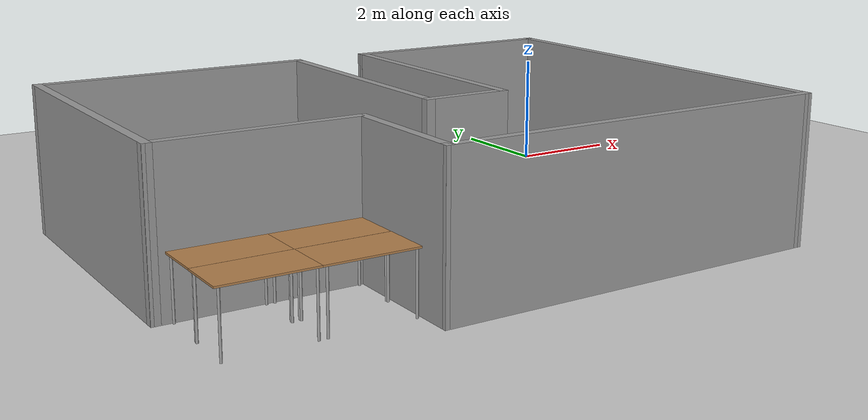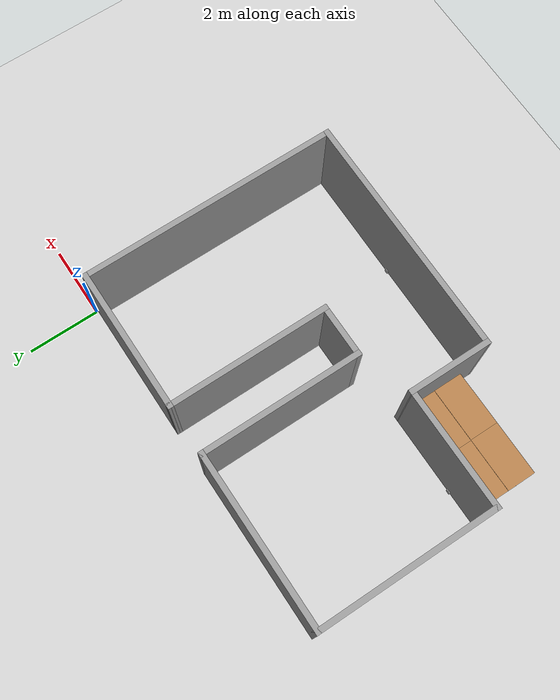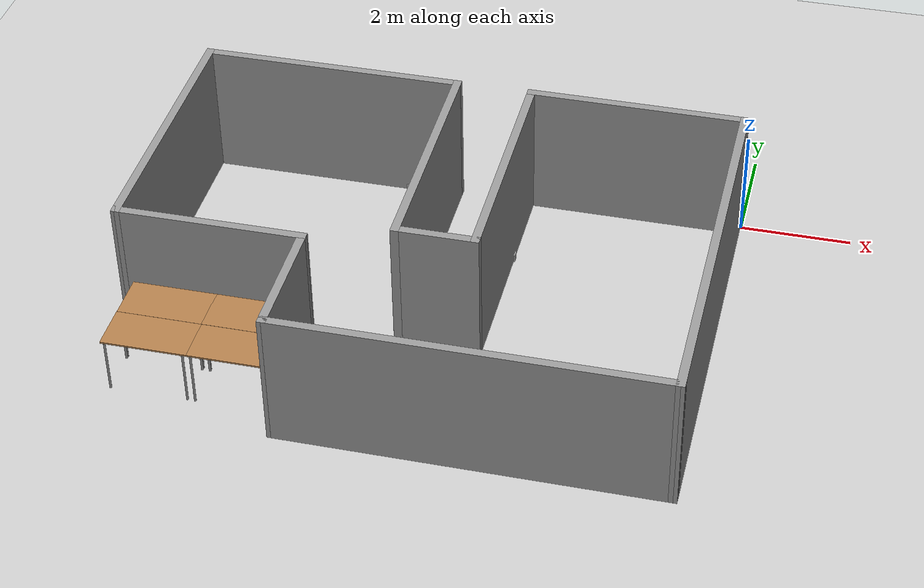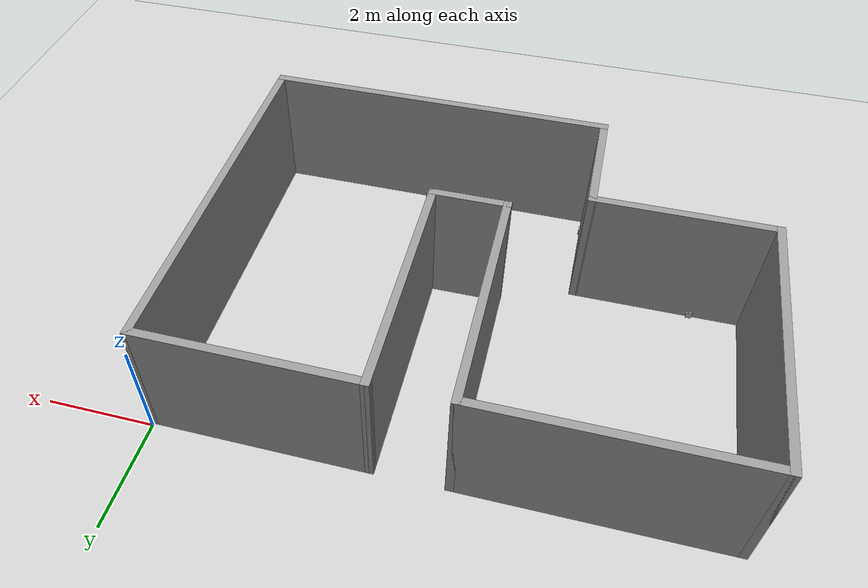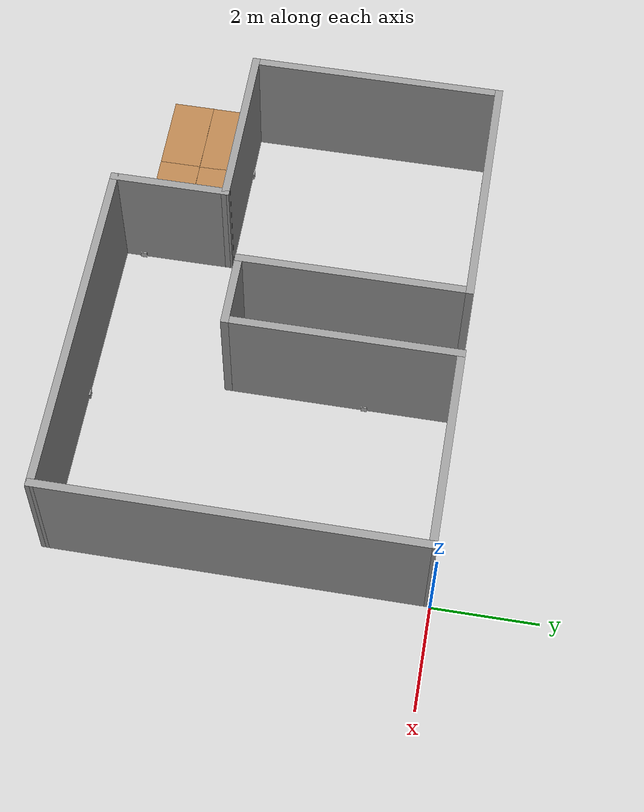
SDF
<sdf version="1.6">
 <world name="default">
  <scene><ambient>0.4 0.4 0.4 1</ambient><background>0.7 0.7 0.7 1</background><shadows>1</shadows></scene>
  <light name="sun" type="directional">
   <pose>0 0 10 0 -0 0</pose>
   <diffuse>0.8 0.8 0.8 1</diffuse>
   <specular>0.2 0.2 0.2 1</specular>
   <attenuation>
    <range>1000</range>
    <constant>0.9</constant>
    <linear>0.01</linear>
    <quadratic>0.001</quadratic>
   </attenuation>
   <direction>-0.5 0.1 -0.9</direction>
  </light>
  <model name="ground_plane">
   <static>1</static>
   <link name="link">
    <collision name="collision">
     <geometry><plane><normal>0 0 1</normal><size>100 100</size></plane></geometry>
     <surface><friction><ode><mu>100</mu><mu2>50</mu2></ode></friction></surface>
    </collision>
    <visual name="visual">
     <cast_shadows>0</cast_shadows>
     <geometry><plane><normal>0 0 1</normal><size>100 100</size></plane></geometry>
     <material>
      <script><uri>file://media/materials/scripts/gazebo.material</uri><name>Gazebo/Grey</name></script>
     </material>
    </visual>
   </link>
  </model>
  <physics name="default_physics" default="0" type="ode">
   <real_time_update_rate>1000</real_time_update_rate>
   <max_step_size>0.001</max_step_size>
   <real_time_factor>1</real_time_factor>
   <ode>
    <solver>
     <type>quick</type>
     <iters>150</iters>
     <precon_iters>0</precon_iters>
     <sor>1.4</sor>
     <use_dynamic_moi_rescaling>1</use_dynamic_moi_rescaling>
    </solver>
    <constraints>
     <cfm>1e-05</cfm>
     <erp>0.2</erp>
     <contact_max_correcting_vel>2000</contact_max_correcting_vel>
     <contact_surface_layer>0.01</contact_surface_layer>
    </constraints>
   </ode>
  </physics>
  <gravity>0 0 -9.8</gravity>
  <magnetic_field>6e-06 2.3e-05 -4.2e-05</magnetic_field>
  <atmosphere type="adiabatic"/>
  <audio><device>default</device></audio>
  <spherical_coordinates>
   <surface_model>EARTH_WGS84</surface_model>
   <latitude_deg>0</latitude_deg>
   <longitude_deg>0</longitude_deg>
   <elevation>0</elevation>
   <heading_deg>0</heading_deg>
  </spherical_coordinates>
  <model name="table">
   <static>1</static>
   <link name="link">
    <collision name="surface">
     <pose>0 0 1 0 -0 0</pose>
     <geometry><box><size>1.5 0.8 0.03</size></box></geometry>
     <surface><friction><ode><mu>0.6</mu><mu2>0.6</mu2></ode></friction></surface>
    </collision>
    <visual name="visual1">
     <pose>0 0 1 0 -0 0</pose>
     <geometry><box><size>1.5 0.8 0.03</size></box></geometry>
     <material>
      <script><uri>file://media/materials/scripts/gazebo.material</uri><name>Gazebo/Wood</name></script>
     </material>
    </visual>
    <collision name="front_left_leg">
     <pose>0.68 0.38 0.5 0 -0 0</pose>
     <geometry><cylinder><radius>0.02</radius><length>1</length></cylinder></geometry>
    </collision>
    <visual name="front_left_leg">
     <pose>0.68 0.38 0.5 0 -0 0</pose>
     <geometry><cylinder><radius>0.02</radius><length>1</length></cylinder></geometry>
     <material>
      <script><uri>file://media/materials/scripts/gazebo.material</uri><name>Gazebo/Grey</name></script>
     </material>
    </visual>
    <collision name="front_right_leg">
     <pose>0.68 -0.38 0.5 0 -0 0</pose>
     <geometry><cylinder><radius>0.02</radius><length>1</length></cylinder></geometry>
    </collision>
    <visual name="front_right_leg">
     <pose>0.68 -0.38 0.5 0 -0 0</pose>
     <geometry><cylinder><radius>0.02</radius><length>1</length></cylinder></geometry>
     <material>
      <script><uri>file://media/materials/scripts/gazebo.material</uri><name>Gazebo/Grey</name></script>
     </material>
    </visual>
    <collision name="back_right_leg">
     <pose>-0.68 -0.38 0.5 0 -0 0</pose>
     <geometry><cylinder><radius>0.02</radius><length>1</length></cylinder></geometry>
    </collision>
    <visual name="back_right_leg">
     <pose>-0.68 -0.38 0.5 0 -0 0</pose>
     <geometry><cylinder><radius>0.02</radius><length>1</length></cylinder></geometry>
     <material>
      <script><uri>file://media/materials/scripts/gazebo.material</uri><name>Gazebo/Grey</name></script>
     </material>
    </visual>
    <collision name="back_left_leg">
     <pose>-0.68 0.38 0.5 0 -0 0</pose>
     <geometry><cylinder><radius>0.02</radius><length>1</length></cylinder></geometry>
    </collision>
    <visual name="back_left_leg">
     <pose>-0.68 0.38 0.5 0 -0 0</pose>
     <geometry><cylinder><radius>0.02</radius><length>1</length></cylinder></geometry>
     <material>
      <script><uri>file://media/materials/scripts/gazebo.material</uri><name>Gazebo/Grey</name></script>
     </material>
    </visual>
   </link>
   <pose>-7.575 -5.45474 0 0 -0 0</pose>
  </model>
  <model name="sign_stop">
   <static>1</static>
   <link name="box">
    <collision name="collision"><geometry><box><size>0.12 0.025 0.25</size></box></geometry></collision>
    <visual name="visual">
     <geometry><box><size>0.12 0.025 0.25</size></box></geometry>
     <material>
      <script>
       <uri>model://sign_stop/materials/scripts</uri>
       <uri>model://sign_stop/materials/textures</uri>
       <name>sign_stop</name>
      </script>
     </material>
    </visual>
   </link>
   <pose>-3.85404 -1.79856 0 0 0 -1.5974</pose>
  </model>
  <model name="sign_stop_clone">
   <static>1</static>
   <link name="box">
    <collision name="collision"><geometry><box><size>0.12 0.025 0.25</size></box></geometry></collision>
    <visual name="visual">
     <geometry><box><size>0.12 0.025 0.25</size></box></geometry>
     <material>
      <script>
       <uri>model://sign_stop/materials/scripts</uri>
       <uri>model://sign_stop/materials/textures</uri>
       <name>sign_stop</name>
      </script>
     </material>
    </visual>
   </link>
   <pose>-3.3 -7.06148 0 0 -0 0</pose>
  </model>
  <model name="sign_stop_clone_1">
   <static>1</static>
   <link name="box">
    <collision name="collision"><geometry><box><size>0.12 0.025 0.25</size></box></geometry></collision>
    <visual name="visual">
     <geometry><box><size>0.12 0.025 0.25</size></box></geometry>
     <material>
      <script>
       <uri>model://sign_stop/materials/scripts</uri>
       <uri>model://sign_stop/materials/textures</uri>
       <name>sign_stop</name>
      </script>
     </material>
    </visual>
   </link>
   <pose>-6.23 -0.193478 0 0 -0 0</pose>
  </model>
  <model name="sign_stop_clone_3">
   <static>1</static>
   <link name="box">
    <collision name="collision"><geometry><box><size>0.12 0.025 0.25</size></box></geometry></collision>
    <visual name="visual">
     <geometry><box><size>0.12 0.025 0.25</size></box></geometry>
     <material>
      <script>
       <uri>model://sign_stop/materials/scripts</uri>
       <uri>model://sign_stop/materials/textures</uri>
       <name>sign_stop</name>
      </script>
     </material>
    </visual>
   </link>
   <pose>-6.65934 -6.71927 0 0 0 -1.58302</pose>
  </model>
  <model name="sign_stop_clone_0">
   <static>1</static>
   <link name="box">
    <collision name="collision"><geometry><box><size>0.12 0.025 0.25</size></box></geometry></collision>
    <visual name="visual">
     <geometry><box><size>0.12 0.025 0.25</size></box></geometry>
     <material>
      <script>
       <uri>model://sign_stop/materials/scripts</uri>
       <uri>model://sign_stop/materials/textures</uri>
       <name>sign_stop</name>
      </script>
     </material>
    </visual>
   </link>
   <pose>-9 -4.88 0 0 0 -0.002486</pose>
  </model>
  <model name="Measured_Stage">
   <pose>-5.03694 -3.63099 0 0 -0 0</pose>
   <link name="Wall_0">
    <collision name="Wall_0_Collision">
     <geometry><box><size>7.2 0.15 2.5</size></box></geometry>
     <pose>0 0 1.25 0 -0 0</pose>
    </collision>
    <visual name="Wall_0_Visual">
     <pose>0 0 1.25 0 -0 0</pose>
     <geometry><box><size>7.2 0.15 2.5</size></box></geometry>
     <material>
      <script><uri>file://media/materials/scripts/gazebo.material</uri><name>Gazebo/Grey</name></script>
      <ambient>1 1 1 1</ambient>
     </material>
     <meta><layer>0</layer></meta>
    </visual>
    <pose>4.94994 -0.006028 0 0 -0 1.5708</pose>
   </link>
   <link name="Wall_10">
    <collision name="Wall_10_Collision">
     <geometry><box><size>4.5 0.15 2.5</size></box></geometry>
     <pose>0 0 1.25 0 -0 0</pose>
    </collision>
    <visual name="Wall_10_Visual">
     <pose>0 0 1.25 0 -0 0</pose>
     <geometry><box><size>4.5 0.15 2.5</size></box></geometry>
     <material>
      <script><uri>file://media/materials/scripts/gazebo.material</uri><name>Gazebo/Grey</name></script>
      <ambient>1 1 1 1</ambient>
     </material>
     <meta><layer>0</layer></meta>
    </visual>
    <pose>1.09995 1.35598 0 0 -0 -1.5708</pose>
   </link>
   <link name="Wall_12">
    <collision name="Wall_12_Collision">
     <geometry><box><size>4.488 0.15 2.5</size></box></geometry>
     <pose>0 0 1.25 0 -0 0</pose>
    </collision>
    <visual name="Wall_12_Visual">
     <pose>0 0 1.25 0 -0 0</pose>
     <geometry><box><size>4.488 0.15 2.5</size></box></geometry>
     <material>
      <script><uri>file://media/materials/scripts/gazebo.material</uri><name>Gazebo/Grey</name></script>
      <ambient>1 1 1 1</ambient>
     </material>
     <meta><layer>0</layer></meta>
    </visual>
    <pose>-0.266063 1.34997 0 0 -0 1.5708</pose>
   </link>
   <link name="Wall_16">
    <collision name="Wall_16_Collision">
     <geometry><box><size>4 0.15 2.5</size></box></geometry>
     <pose>0 0 1.25 0 -0 0</pose>
    </collision>
    <visual name="Wall_16_Visual">
     <pose>0 0 1.25 0 -0 0</pose>
     <geometry><box><size>4 0.15 2.5</size></box></geometry>
     <material>
      <script><uri>file://media/materials/scripts/gazebo.material</uri><name>Gazebo/Grey</name></script>
      <ambient>1 1 1 1</ambient>
     </material>
     <meta><layer>0</layer></meta>
    </visual>
    <pose>3.02495 3.52498 0 0 -0 3.13847</pose>
   </link>
   <link name="Wall_18">
    <collision name="Wall_18_Collision">
     <geometry><box><size>1.51642 0.15 2.5</size></box></geometry>
     <pose>0 0 1.25 0 -0 0</pose>
    </collision>
    <visual name="Wall_18_Visual">
     <pose>0 0 1.25 0 -0 0</pose>
     <geometry><box><size>1.51642 0.15 2.5</size></box></geometry>
     <material>
      <script><uri>file://media/materials/scripts/gazebo.material</uri><name>Gazebo/Grey</name></script>
      <ambient>1 1 1 1</ambient>
     </material>
     <meta><layer>0</layer></meta>
    </visual>
    <pose>0.416937 -0.819028 0 0 -0 0</pose>
   </link>
   <link name="Wall_2">
    <collision name="Wall_2_Collision">
     <geometry><box><size>6.81 0.15 2.5</size></box></geometry>
     <pose>0 0 1.25 0 -0 0</pose>
    </collision>
    <visual name="Wall_2_Visual">
     <pose>0 0 1.25 0 -0 0</pose>
     <geometry><box><size>6.81 0.15 2.5</size></box></geometry>
     <material>
      <script><uri>file://media/materials/scripts/gazebo.material</uri><name>Gazebo/Grey</name></script>
      <ambient>1 1 1 1</ambient>
     </material>
     <meta><layer>0</layer></meta>
    </visual>
    <pose>1.61994 -3.52228 0 0 -0 3.13897</pose>
   </link>
   <link name="Wall_20">
    <collision name="Wall_20_Collision">
     <geometry><box><size>4.83422 0.15 2.5</size></box></geometry>
     <pose>0 0 1.25 0 -0 0</pose>
    </collision>
    <visual name="Wall_20_Visual">
     <pose>0 0 1.25 0 -0 0</pose>
     <geometry><box><size>4.83422 0.15 2.5</size></box></geometry>
     <material>
      <script><uri>file://media/materials/scripts/gazebo.material</uri><name>Gazebo/Grey</name></script>
      <ambient>1 1 1 1</ambient>
     </material>
     <meta><layer>0</layer></meta>
    </visual>
    <pose>-2.60806 3.51897 0 0 -0 0</pose>
   </link>
   <link name="Wall_4">
    <collision name="Wall_4_Collision">
     <geometry><box><size>2.32 0.15 2.5</size></box></geometry>
     <pose>0 0 1.25 0 -0 0</pose>
    </collision>
    <visual name="Wall_4_Visual">
     <pose>0 0 1.25 0 -0 0</pose>
     <geometry><box><size>2.32 0.15 2.5</size></box></geometry>
     <material>
      <script><uri>file://media/materials/scripts/gazebo.material</uri><name>Gazebo/Grey</name></script>
      <ambient>1 1 1 1</ambient>
     </material>
     <meta><layer>0</layer></meta>
    </visual>
    <pose>-1.71006 -2.42854 0 0 -0 1.5708</pose>
   </link>
   <link name="Wall_5">
    <collision name="Wall_5_Collision">
     <geometry><box><size>3.39 0.15 2.5</size></box></geometry>
     <pose>0 0 1.25 0 -0 0</pose>
    </collision>
    <visual name="Wall_5_Visual">
     <pose>0 0 1.25 0 -0 0</pose>
     <geometry><box><size>3.39 0.15 2.5</size></box></geometry>
     <material>
      <script><uri>file://media/materials/scripts/gazebo.material</uri><name>Gazebo/Grey</name></script>
      <ambient>1 1 1 1</ambient>
     </material>
     <meta><layer>0</layer></meta>
    </visual>
    <pose>-3.33006 -1.34378 0 0 -0 -3.14144</pose>
   </link>
   <link name="Wall_7">
    <collision name="Wall_7_Collision">
     <geometry><box><size>5.013 0.15 2.5</size></box></geometry>
     <pose>0 0 1.25 0 -0 0</pose>
    </collision>
    <visual name="Wall_7_Visual">
     <pose>0 0 1.25 0 -0 0</pose>
     <geometry><box><size>5.013 0.15 2.5</size></box></geometry>
     <material>
      <script><uri>file://media/materials/scripts/gazebo.material</uri><name>Gazebo/Grey</name></script>
      <ambient>1 1 1 1</ambient>
     </material>
     <meta><layer>0</layer></meta>
    </visual>
    <pose>-4.95006 1.08747 0 0 -0 1.5708</pose>
   </link>
   <static>1</static>
  </model>
  <model name="table_clone">
   <static>1</static>
   <link name="link">
    <collision name="surface">
     <pose>0 0 1 0 -0 0</pose>
     <geometry><box><size>1.5 0.8 0.03</size></box></geometry>
     <surface><friction><ode><mu>0.6</mu><mu2>0.6</mu2></ode></friction></surface>
    </collision>
    <visual name="visual1">
     <pose>0 0 1 0 -0 0</pose>
     <geometry><box><size>1.5 0.8 0.03</size></box></geometry>
     <material>
      <script><uri>file://media/materials/scripts/gazebo.material</uri><name>Gazebo/Wood</name></script>
     </material>
    </visual>
    <collision name="front_left_leg">
     <pose>0.68 0.38 0.5 0 -0 0</pose>
     <geometry><cylinder><radius>0.02</radius><length>1</length></cylinder></geometry>
    </collision>
    <visual name="front_left_leg">
     <pose>0.68 0.38 0.5 0 -0 0</pose>
     <geometry><cylinder><radius>0.02</radius><length>1</length></cylinder></geometry>
     <material>
      <script><uri>file://media/materials/scripts/gazebo.material</uri><name>Gazebo/Grey</name></script>
     </material>
    </visual>
    <collision name="front_right_leg">
     <pose>0.68 -0.38 0.5 0 -0 0</pose>
     <geometry><cylinder><radius>0.02</radius><length>1</length></cylinder></geometry>
    </collision>
    <visual name="front_right_leg">
     <pose>0.68 -0.38 0.5 0 -0 0</pose>
     <geometry><cylinder><radius>0.02</radius><length>1</length></cylinder></geometry>
     <material>
      <script><uri>file://media/materials/scripts/gazebo.material</uri><name>Gazebo/Grey</name></script>
     </material>
    </visual>
    <collision name="back_right_leg">
     <pose>-0.68 -0.38 0.5 0 -0 0</pose>
     <geometry><cylinder><radius>0.02</radius><length>1</length></cylinder></geometry>
    </collision>
    <visual name="back_right_leg">
     <pose>-0.68 -0.38 0.5 0 -0 0</pose>
     <geometry><cylinder><radius>0.02</radius><length>1</length></cylinder></geometry>
     <material>
      <script><uri>file://media/materials/scripts/gazebo.material</uri><name>Gazebo/Grey</name></script>
     </material>
    </visual>
    <collision name="back_left_leg">
     <pose>-0.68 0.38 0.5 0 -0 0</pose>
     <geometry><cylinder><radius>0.02</radius><length>1</length></cylinder></geometry>
    </collision>
    <visual name="back_left_leg">
     <pose>-0.68 0.38 0.5 0 -0 0</pose>
     <geometry><cylinder><radius>0.02</radius><length>1</length></cylinder></geometry>
     <material>
      <script><uri>file://media/materials/scripts/gazebo.material</uri><name>Gazebo/Grey</name></script>
     </material>
    </visual>
   </link>
   <pose>-7.57082 -6.25687 0 0 -0 0</pose>
  </model>
  <model name="table_clone_0">
   <static>1</static>
   <link name="link">
    <collision name="surface">
     <pose>0 0 1 0 -0 0</pose>
     <geometry><box><size>1.5 0.8 0.03</size></box></geometry>
     <surface><friction><ode><mu>0.6</mu><mu2>0.6</mu2></ode></friction></surface>
    </collision>
    <visual name="visual1">
     <pose>0 0 1 0 -0 0</pose>
     <geometry><box><size>1.5 0.8 0.03</size></box></geometry>
     <material>
      <script><uri>file://media/materials/scripts/gazebo.material</uri><name>Gazebo/Wood</name></script>
     </material>
    </visual>
    <collision name="front_left_leg">
     <pose>0.68 0.38 0.5 0 -0 0</pose>
     <geometry><cylinder><radius>0.02</radius><length>1</length></cylinder></geometry>
    </collision>
    <visual name="front_left_leg">
     <pose>0.68 0.38 0.5 0 -0 0</pose>
     <geometry><cylinder><radius>0.02</radius><length>1</length></cylinder></geometry>
     <material>
      <script><uri>file://media/materials/scripts/gazebo.material</uri><name>Gazebo/Grey</name></script>
     </material>
    </visual>
    <collision name="front_right_leg">
     <pose>0.68 -0.38 0.5 0 -0 0</pose>
     <geometry><cylinder><radius>0.02</radius><length>1</length></cylinder></geometry>
    </collision>
    <visual name="front_right_leg">
     <pose>0.68 -0.38 0.5 0 -0 0</pose>
     <geometry><cylinder><radius>0.02</radius><length>1</length></cylinder></geometry>
     <material>
      <script><uri>file://media/materials/scripts/gazebo.material</uri><name>Gazebo/Grey</name></script>
     </material>
    </visual>
    <collision name="back_right_leg">
     <pose>-0.68 -0.38 0.5 0 -0 0</pose>
     <geometry><cylinder><radius>0.02</radius><length>1</length></cylinder></geometry>
    </collision>
    <visual name="back_right_leg">
     <pose>-0.68 -0.38 0.5 0 -0 0</pose>
     <geometry><cylinder><radius>0.02</radius><length>1</length></cylinder></geometry>
     <material>
      <script><uri>file://media/materials/scripts/gazebo.material</uri><name>Gazebo/Grey</name></script>
     </material>
    </visual>
    <collision name="back_left_leg">
     <pose>-0.68 0.38 0.5 0 -0 0</pose>
     <geometry><cylinder><radius>0.02</radius><length>1</length></cylinder></geometry>
    </collision>
    <visual name="back_left_leg">
     <pose>-0.68 0.38 0.5 0 -0 0</pose>
     <geometry><cylinder><radius>0.02</radius><length>1</length></cylinder></geometry>
     <material>
      <script><uri>file://media/materials/scripts/gazebo.material</uri><name>Gazebo/Grey</name></script>
     </material>
    </visual>
   </link>
   <pose>-9.06422 -5.45561 0 0 -0 0</pose>
  </model>
  <model name="table_clone_1">
   <static>1</static>
   <link name="link">
    <collision name="surface">
     <pose>0 0 1 0 -0 0</pose>
     <geometry><box><size>1.5 0.8 0.03</size></box></geometry>
     <surface><friction><ode><mu>0.6</mu><mu2>0.6</mu2></ode></friction></surface>
    </collision>
    <visual name="visual1">
     <pose>0 0 1 0 -0 0</pose>
     <geometry><box><size>1.5 0.8 0.03</size></box></geometry>
     <material>
      <script><uri>file://media/materials/scripts/gazebo.material</uri><name>Gazebo/Wood</name></script>
     </material>
    </visual>
    <collision name="front_left_leg">
     <pose>0.68 0.38 0.5 0 -0 0</pose>
     <geometry><cylinder><radius>0.02</radius><length>1</length></cylinder></geometry>
    </collision>
    <visual name="front_left_leg">
     <pose>0.68 0.38 0.5 0 -0 0</pose>
     <geometry><cylinder><radius>0.02</radius><length>1</length></cylinder></geometry>
     <material>
      <script><uri>file://media/materials/scripts/gazebo.material</uri><name>Gazebo/Grey</name></script>
     </material>
    </visual>
    <collision name="front_right_leg">
     <pose>0.68 -0.38 0.5 0 -0 0</pose>
     <geometry><cylinder><radius>0.02</radius><length>1</length></cylinder></geometry>
    </collision>
    <visual name="front_right_leg">
     <pose>0.68 -0.38 0.5 0 -0 0</pose>
     <geometry><cylinder><radius>0.02</radius><length>1</length></cylinder></geometry>
     <material>
      <script><uri>file://media/materials/scripts/gazebo.material</uri><name>Gazebo/Grey</name></script>
     </material>
    </visual>
    <collision name="back_right_leg">
     <pose>-0.68 -0.38 0.5 0 -0 0</pose>
     <geometry><cylinder><radius>0.02</radius><length>1</length></cylinder></geometry>
    </collision>
    <visual name="back_right_leg">
     <pose>-0.68 -0.38 0.5 0 -0 0</pose>
     <geometry><cylinder><radius>0.02</radius><length>1</length></cylinder></geometry>
     <material>
      <script><uri>file://media/materials/scripts/gazebo.material</uri><name>Gazebo/Grey</name></script>
     </material>
    </visual>
    <collision name="back_left_leg">
     <pose>-0.68 0.38 0.5 0 -0 0</pose>
     <geometry><cylinder><radius>0.02</radius><length>1</length></cylinder></geometry>
    </collision>
    <visual name="back_left_leg">
     <pose>-0.68 0.38 0.5 0 -0 0</pose>
     <geometry><cylinder><radius>0.02</radius><length>1</length></cylinder></geometry>
     <material>
      <script><uri>file://media/materials/scripts/gazebo.material</uri><name>Gazebo/Grey</name></script>
     </material>
    </visual>
   </link>
   <pose>-9.06798 -6.25667 0 0 -0 0</pose>
  </model>
 </world>
</sdf>
